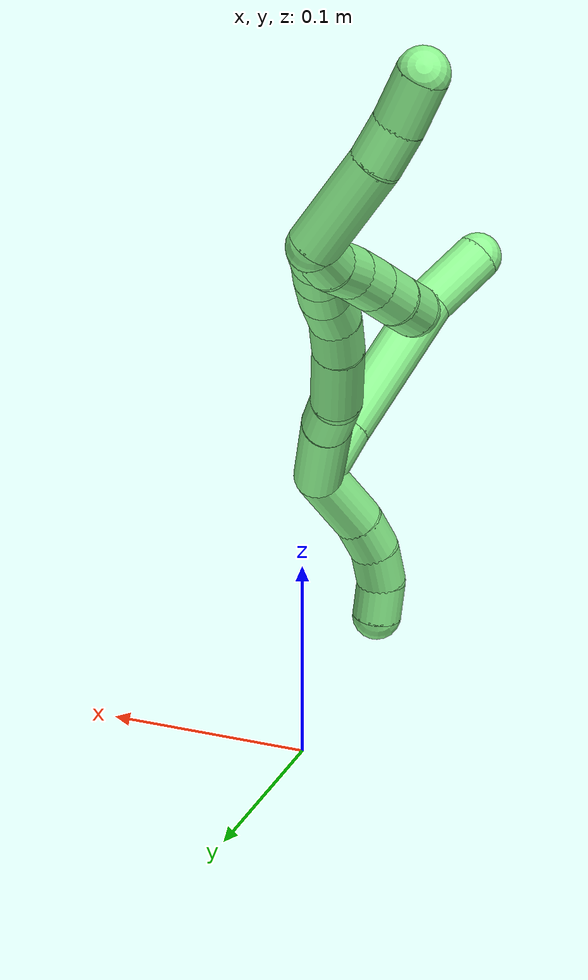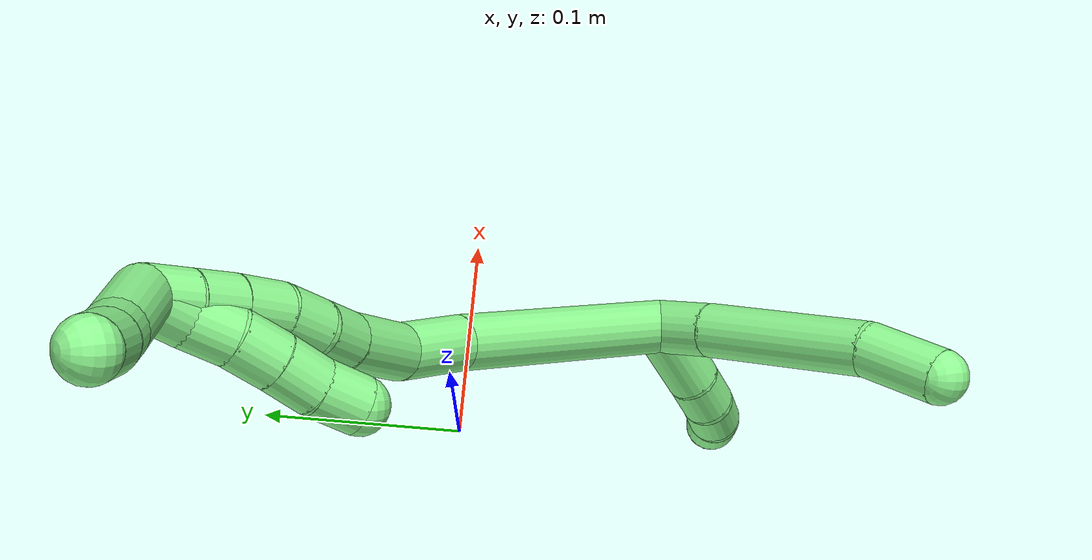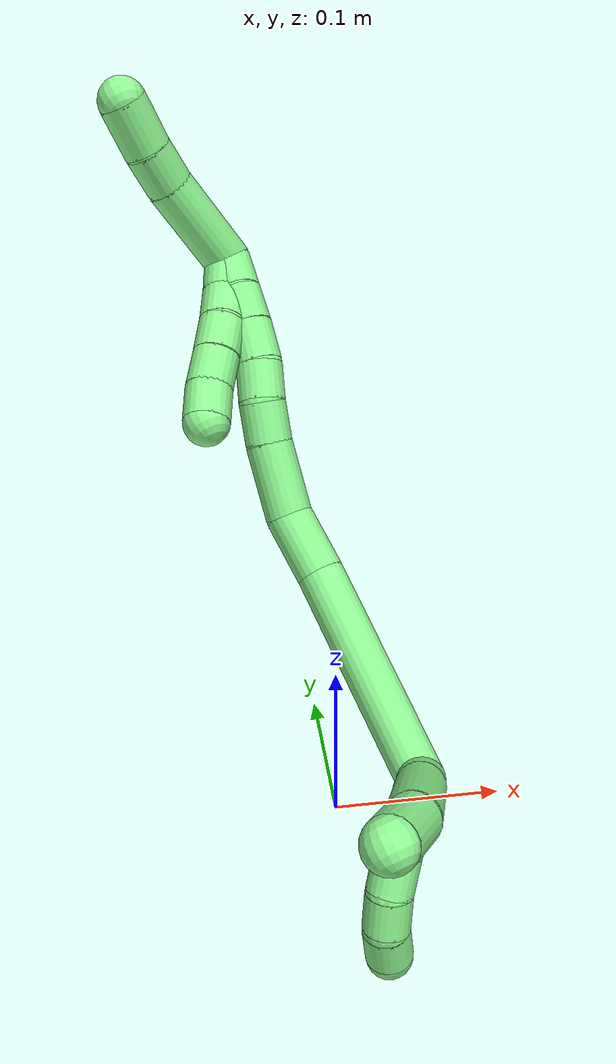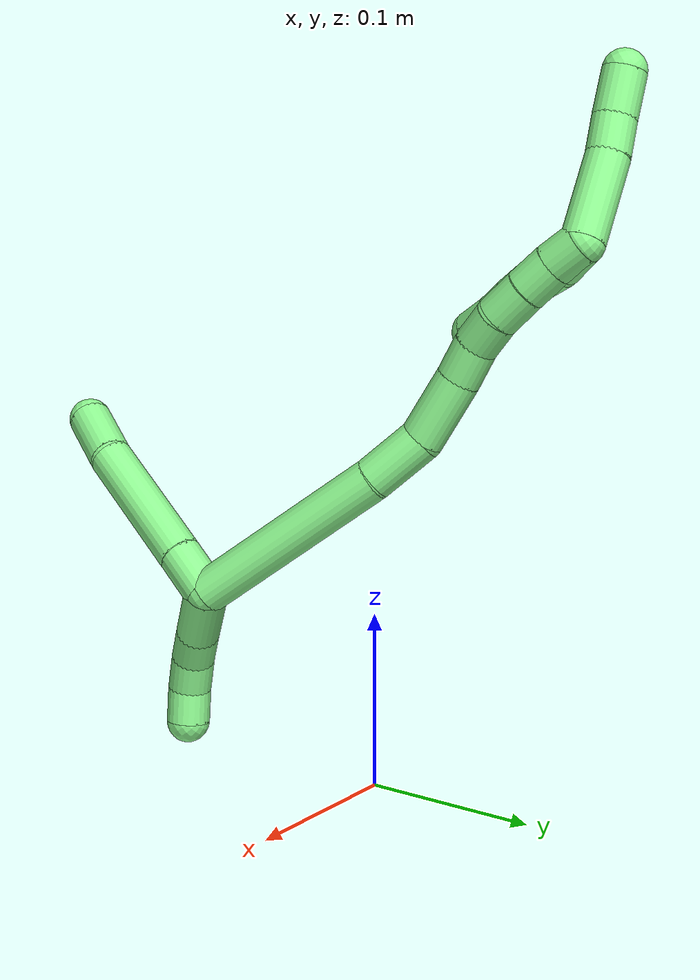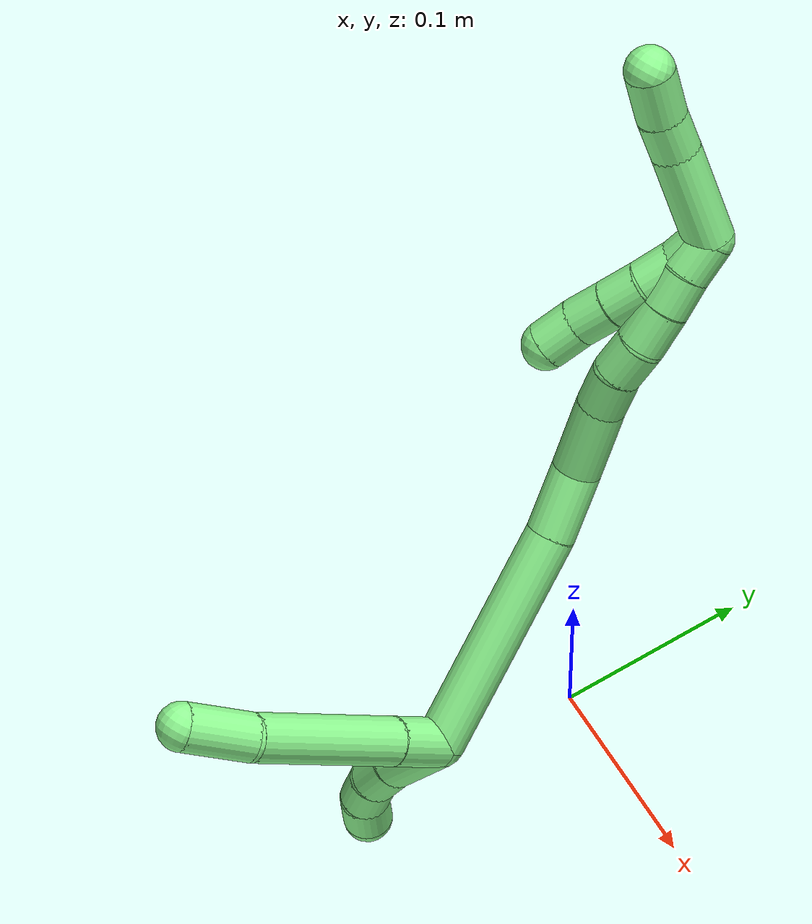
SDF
<sdf version="1.7">
 <world name="default">
  <model name="13">
   <static>0</static>
   <link name="13">
    <collision name="collision-cylinder-e_1_2_8">
     <pose>-0.007378 -0.012369 -0.002717 1.78703 -0.527536 -0.647978</pose>
     <geometry><cylinder><radius>0.0125</radius><length>0.029313</length></cylinder></geometry>
     <surface>
      <friction><ode><mu>1.16</mu><mu2>1.16</mu2><slip1>0</slip1><slip2>0</slip2></ode></friction>
      <contact><ode><kp>1e+06</kp><kd>1</kd><max_vel>0</max_vel><min_depth>0.001</min_depth></ode></contact>
     </surface>
    </collision>
    <visual name="visual-cylinder-e_1_2_8">
     <pose>-0.007378 -0.012369 -0.002717 1.78703 -0.527536 -0.647978</pose>
     <geometry><cylinder><radius>0.0125</radius><length>0.029313</length></cylinder></geometry>
     <material><ambient>0.564706 0.984314 0.572549 1</ambient></material>
    </visual>
    <collision name="collision-cylinder-e_2_8_9">
     <pose>-0.037146 -0.058841 -0.014051 1.81829 -0.566842 -0.715806</pose>
     <geometry><cylinder><radius>0.0125</radius><length>0.083391</length></cylinder></geometry>
     <surface>
      <friction><ode><mu>1.16</mu><mu2>1.16</mu2><slip1>0</slip1><slip2>0</slip2></ode></friction>
      <contact><ode><kp>1e+06</kp><kd>1</kd><max_vel>0</max_vel><min_depth>0.001</min_depth></ode></contact>
     </surface>
    </collision>
    <visual name="visual-cylinder-e_2_8_9">
     <pose>-0.037146 -0.058841 -0.014051 1.81829 -0.566842 -0.715806</pose>
     <geometry><cylinder><radius>0.0125</radius><length>0.083391</length></cylinder></geometry>
     <material><ambient>0.564706 0.984314 0.572549 1</ambient></material>
    </visual>
    <collision name="collision-cylinder-e_3_9_6">
     <pose>-0.072696 -0.105689 -0.026142 1.8369 -0.783533 -0.9915</pose>
     <geometry><cylinder><radius>0.0125</radius><length>0.037296</length></cylinder></geometry>
     <surface>
      <friction><ode><mu>1.16</mu><mu2>1.16</mu2><slip1>0</slip1><slip2>0</slip2></ode></friction>
      <contact><ode><kp>1e+06</kp><kd>1</kd><max_vel>0</max_vel><min_depth>0.001</min_depth></ode></contact>
     </surface>
    </collision>
    <visual name="visual-cylinder-e_3_9_6">
     <pose>-0.072696 -0.105689 -0.026142 1.8369 -0.783533 -0.9915</pose>
     <geometry><cylinder><radius>0.0125</radius><length>0.037296</length></cylinder></geometry>
     <material><ambient>0.564706 0.984314 0.572549 1</ambient></material>
    </visual>
    <collision name="collision-cylinder-e_1_2_10">
     <pose>-0.010172 0.009055 -0.013481 -2.55014 -0.559592 1.51228</pose>
     <geometry><cylinder><radius>0.0125</radius><length>0.038326</length></cylinder></geometry>
     <surface>
      <friction><ode><mu>1.16</mu><mu2>1.16</mu2><slip1>0</slip1><slip2>0</slip2></ode></friction>
      <contact><ode><kp>1e+06</kp><kd>1</kd><max_vel>0</max_vel><min_depth>0.001</min_depth></ode></contact>
     </surface>
    </collision>
    <visual name="visual-cylinder-e_1_2_10">
     <pose>-0.010172 0.009055 -0.013481 -2.55014 -0.559592 1.51228</pose>
     <geometry><cylinder><radius>0.0125</radius><length>0.038326</length></cylinder></geometry>
     <material><ambient>0.564706 0.984314 0.572549 1</ambient></material>
    </visual>
    <collision name="collision-cylinder-e_2_10_11">
     <pose>-0.024533 0.023882 -0.03462 -2.49563 -0.411778 1.11574</pose>
     <geometry><cylinder><radius>0.0125</radius><length>0.020927</length></cylinder></geometry>
     <surface>
      <friction><ode><mu>1.16</mu><mu2>1.16</mu2><slip1>0</slip1><slip2>0</slip2></ode></friction>
      <contact><ode><kp>1e+06</kp><kd>1</kd><max_vel>0</max_vel><min_depth>0.001</min_depth></ode></contact>
     </surface>
    </collision>
    <visual name="visual-cylinder-e_2_10_11">
     <pose>-0.024533 0.023882 -0.03462 -2.49563 -0.411778 1.11574</pose>
     <geometry><cylinder><radius>0.0125</radius><length>0.020927</length></cylinder></geometry>
     <material><ambient>0.564706 0.984314 0.572549 1</ambient></material>
    </visual>
    <collision name="collision-cylinder-e_3_11_12">
     <pose>-0.030522 0.036642 -0.049617 -2.38082 -0.175917 0.434136</pose>
     <geometry><cylinder><radius>0.0125</radius><length>0.020587</length></cylinder></geometry>
     <surface>
      <friction><ode><mu>1.16</mu><mu2>1.16</mu2><slip1>0</slip1><slip2>0</slip2></ode></friction>
      <contact><ode><kp>1e+06</kp><kd>1</kd><max_vel>0</max_vel><min_depth>0.001</min_depth></ode></contact>
     </surface>
    </collision>
    <visual name="visual-cylinder-e_3_11_12">
     <pose>-0.030522 0.036642 -0.049617 -2.38082 -0.175917 0.434136</pose>
     <geometry><cylinder><radius>0.0125</radius><length>0.020587</length></cylinder></geometry>
     <material><ambient>0.564706 0.984314 0.572549 1</ambient></material>
    </visual>
    <collision name="collision-cylinder-e_4_12_5">
     <pose>-0.031135 0.05151 -0.06313 -2.23521 0.118187 -0.241783</pose>
     <geometry><cylinder><radius>0.0125</radius><length>0.02016</length></cylinder></geometry>
     <surface>
      <friction><ode><mu>1.16</mu><mu2>1.16</mu2><slip1>0</slip1><slip2>0</slip2></ode></friction>
      <contact><ode><kp>1e+06</kp><kd>1</kd><max_vel>0</max_vel><min_depth>0.001</min_depth></ode></contact>
     </surface>
    </collision>
    <visual name="visual-cylinder-e_4_12_5">
     <pose>-0.031135 0.05151 -0.06313 -2.23521 0.118187 -0.241783</pose>
     <geometry><cylinder><radius>0.0125</radius><length>0.02016</length></cylinder></geometry>
     <material><ambient>0.564706 0.984314 0.572549 1</ambient></material>
    </visual>
    <collision name="collision-cylinder-e_1_2_13">
     <pose>-0.000391 4e-05 0.05959 -0.00067 -0.006557 2e-06</pose>
     <geometry><cylinder><radius>0.0125</radius><length>0.119183</length></cylinder></geometry>
     <surface>
      <friction><ode><mu>1.16</mu><mu2>1.16</mu2><slip1>0</slip1><slip2>0</slip2></ode></friction>
      <contact><ode><kp>1e+06</kp><kd>1</kd><max_vel>0</max_vel><min_depth>0.001</min_depth></ode></contact>
     </surface>
    </collision>
    <visual name="visual-cylinder-e_1_2_13">
     <pose>-0.000391 4e-05 0.05959 -0.00067 -0.006557 2e-06</pose>
     <geometry><cylinder><radius>0.0125</radius><length>0.119183</length></cylinder></geometry>
     <material><ambient>0.564706 0.984314 0.572549 1</ambient></material>
    </visual>
    <collision name="collision-cylinder-e_2_13_14">
     <pose>-0.002432 -0.001289 0.13678 0.077618 -0.093208 -0.003622</pose>
     <geometry><cylinder><radius>0.0125</radius><length>0.035458</length></cylinder></geometry>
     <surface>
      <friction><ode><mu>1.16</mu><mu2>1.16</mu2><slip1>0</slip1><slip2>0</slip2></ode></friction>
      <contact><ode><kp>1e+06</kp><kd>1</kd><max_vel>0</max_vel><min_depth>0.001</min_depth></ode></contact>
     </surface>
    </collision>
    <visual name="visual-cylinder-e_2_13_14">
     <pose>-0.002432 -0.001289 0.13678 0.077618 -0.093208 -0.003622</pose>
     <geometry><cylinder><radius>0.0125</radius><length>0.035458</length></cylinder></geometry>
     <material><ambient>0.564706 0.984314 0.572549 1</ambient></material>
    </visual>
    <collision name="collision-cylinder-e_3_14_15">
     <pose>-0.004166 -0.010582 0.172737 0.407487 -0.00423 -0.000874</pose>
     <geometry><cylinder><radius>0.0125</radius><length>0.039992</length></cylinder></geometry>
     <surface>
      <friction><ode><mu>1.16</mu><mu2>1.16</mu2><slip1>0</slip1><slip2>0</slip2></ode></friction>
      <contact><ode><kp>1e+06</kp><kd>1</kd><max_vel>0</max_vel><min_depth>0.001</min_depth></ode></contact>
     </surface>
    </collision>
    <visual name="visual-cylinder-e_3_14_15">
     <pose>-0.004166 -0.010582 0.172737 0.407487 -0.00423 -0.000874</pose>
     <geometry><cylinder><radius>0.0125</radius><length>0.039992</length></cylinder></geometry>
     <material><ambient>0.564706 0.984314 0.572549 1</ambient></material>
    </visual>
    <collision name="collision-cylinder-e_4_15_16">
     <pose>-0.003329 -0.02339 0.200811 0.465804 0.084598 0.020079</pose>
     <geometry><cylinder><radius>0.0125</radius><length>0.021825</length></cylinder></geometry>
     <surface>
      <friction><ode><mu>1.16</mu><mu2>1.16</mu2><slip1>0</slip1><slip2>0</slip2></ode></friction>
      <contact><ode><kp>1e+06</kp><kd>1</kd><max_vel>0</max_vel><min_depth>0.001</min_depth></ode></contact>
     </surface>
    </collision>
    <visual name="visual-cylinder-e_4_15_16">
     <pose>-0.003329 -0.02339 0.200811 0.465804 0.084598 0.020079</pose>
     <geometry><cylinder><radius>0.0125</radius><length>0.021825</length></cylinder></geometry>
     <material><ambient>0.564706 0.984314 0.572549 1</ambient></material>
    </visual>
    <collision name="collision-cylinder-e_5_16_17">
     <pose>0.000144 -0.031296 0.220106 0.305592 0.248675 0.038489</pose>
     <geometry><cylinder><radius>0.0125</radius><length>0.020729</length></cylinder></geometry>
     <surface>
      <friction><ode><mu>1.16</mu><mu2>1.16</mu2><slip1>0</slip1><slip2>0</slip2></ode></friction>
      <contact><ode><kp>1e+06</kp><kd>1</kd><max_vel>0</max_vel><min_depth>0.001</min_depth></ode></contact>
     </surface>
    </collision>
    <visual name="visual-cylinder-e_5_16_17">
     <pose>0.000144 -0.031296 0.220106 0.305592 0.248675 0.038489</pose>
     <geometry><cylinder><radius>0.0125</radius><length>0.020729</length></cylinder></geometry>
     <material><ambient>0.564706 0.984314 0.572549 1</ambient></material>
    </visual>
    <collision name="collision-cylinder-e_6_17_18">
     <pose>0.00408 -0.036085 0.240649 0.159767 0.124087 0.009946</pose>
     <geometry><cylinder><radius>0.0125</radius><length>0.022381</length></cylinder></geometry>
     <surface>
      <friction><ode><mu>1.16</mu><mu2>1.16</mu2><slip1>0</slip1><slip2>0</slip2></ode></friction>
      <contact><ode><kp>1e+06</kp><kd>1</kd><max_vel>0</max_vel><min_depth>0.001</min_depth></ode></contact>
     </surface>
    </collision>
    <visual name="visual-cylinder-e_6_17_18">
     <pose>0.00408 -0.036085 0.240649 0.159767 0.124087 0.009946</pose>
     <geometry><cylinder><radius>0.0125</radius><length>0.022381</length></cylinder></geometry>
     <material><ambient>0.564706 0.984314 0.572549 1</ambient></material>
    </visual>
    <collision name="collision-cylinder-e_7_18_19">
     <pose>0.00624 -0.039183 0.261622 0.132238 0.076539 0.005071</pose>
     <geometry><cylinder><radius>0.0125</radius><length>0.020254</length></cylinder></geometry>
     <surface>
      <friction><ode><mu>1.16</mu><mu2>1.16</mu2><slip1>0</slip1><slip2>0</slip2></ode></friction>
      <contact><ode><kp>1e+06</kp><kd>1</kd><max_vel>0</max_vel><min_depth>0.001</min_depth></ode></contact>
     </surface>
    </collision>
    <visual name="visual-cylinder-e_7_18_19">
     <pose>0.00624 -0.039183 0.261622 0.132238 0.076539 0.005071</pose>
     <geometry><cylinder><radius>0.0125</radius><length>0.020254</length></cylinder></geometry>
     <material><ambient>0.564706 0.984314 0.572549 1</ambient></material>
    </visual>
    <collision name="collision-cylinder-e_8_19_1">
     <pose>0.008344 -0.040954 0.281622 0.043987 0.132218 0.002913</pose>
     <geometry><cylinder><radius>0.0125</radius><length>0.020178</length></cylinder></geometry>
     <surface>
      <friction><ode><mu>1.16</mu><mu2>1.16</mu2><slip1>0</slip1><slip2>0</slip2></ode></friction>
      <contact><ode><kp>1e+06</kp><kd>1</kd><max_vel>0</max_vel><min_depth>0.001</min_depth></ode></contact>
     </surface>
    </collision>
    <visual name="visual-cylinder-e_8_19_1">
     <pose>0.008344 -0.040954 0.281622 0.043987 0.132218 0.002913</pose>
     <geometry><cylinder><radius>0.0125</radius><length>0.020178</length></cylinder></geometry>
     <material><ambient>0.564706 0.984314 0.572549 1</ambient></material>
    </visual>
    <collision name="collision-cylinder-e_1_1_20">
     <pose>0.005673 -0.039548 0.282636 -2.93882 -0.411675 2.23479</pose>
     <geometry><cylinder><radius>0.0125</radius><length>0.02</length></cylinder></geometry>
     <surface>
      <friction><ode><mu>1.16</mu><mu2>1.16</mu2><slip1>0</slip1><slip2>0</slip2></ode></friction>
      <contact><ode><kp>1e+06</kp><kd>1</kd><max_vel>0</max_vel><min_depth>0.001</min_depth></ode></contact>
     </surface>
    </collision>
    <visual name="visual-cylinder-e_1_1_20">
     <pose>0.005673 -0.039548 0.282636 -2.93882 -0.411675 2.23479</pose>
     <geometry><cylinder><radius>0.0125</radius><length>0.02</length></cylinder></geometry>
     <material><ambient>0.564706 0.984314 0.572549 1</ambient></material>
    </visual>
    <collision name="collision-cylinder-e_2_20_21">
     <pose>-0.00329 -0.038003 0.264982 3.10696 -0.519072 -3.01134</pose>
     <geometry><cylinder><radius>0.0125</radius><length>0.02</length></cylinder></geometry>
     <surface>
      <friction><ode><mu>1.16</mu><mu2>1.16</mu2><slip1>0</slip1><slip2>0</slip2></ode></friction>
      <contact><ode><kp>1e+06</kp><kd>1</kd><max_vel>0</max_vel><min_depth>0.001</min_depth></ode></contact>
     </surface>
    </collision>
    <visual name="visual-cylinder-e_2_20_21">
     <pose>-0.00329 -0.038003 0.264982 3.10696 -0.519072 -3.01134</pose>
     <geometry><cylinder><radius>0.0125</radius><length>0.02</length></cylinder></geometry>
     <material><ambient>0.564706 0.984314 0.572549 1</ambient></material>
    </visual>
    <collision name="collision-cylinder-e_3_21_22">
     <pose>-0.013594 -0.037315 0.24791 -3.02439 -0.563763 2.74181</pose>
     <geometry><cylinder><radius>0.0125</radius><length>0.02</length></cylinder></geometry>
     <surface>
      <friction><ode><mu>1.16</mu><mu2>1.16</mu2><slip1>0</slip1><slip2>0</slip2></ode></friction>
      <contact><ode><kp>1e+06</kp><kd>1</kd><max_vel>0</max_vel><min_depth>0.001</min_depth></ode></contact>
     </surface>
    </collision>
    <visual name="visual-cylinder-e_3_21_22">
     <pose>-0.013594 -0.037315 0.24791 -3.02439 -0.563763 2.74181</pose>
     <geometry><cylinder><radius>0.0125</radius><length>0.02</length></cylinder></geometry>
     <material><ambient>0.564706 0.984314 0.572549 1</ambient></material>
    </visual>
    <collision name="collision-cylinder-e_4_22_23">
     <pose>-0.024379 -0.034892 0.231248 -2.96977 -0.575289 2.57503</pose>
     <geometry><cylinder><radius>0.0125</radius><length>0.02</length></cylinder></geometry>
     <surface>
      <friction><ode><mu>1.16</mu><mu2>1.16</mu2><slip1>0</slip1><slip2>0</slip2></ode></friction>
      <contact><ode><kp>1e+06</kp><kd>1</kd><max_vel>0</max_vel><min_depth>0.001</min_depth></ode></contact>
     </surface>
    </collision>
    <visual name="visual-cylinder-e_4_22_23">
     <pose>-0.024379 -0.034892 0.231248 -2.96977 -0.575289 2.57503</pose>
     <geometry><cylinder><radius>0.0125</radius><length>0.02</length></cylinder></geometry>
     <material><ambient>0.564706 0.984314 0.572549 1</ambient></material>
    </visual>
    <collision name="collision-cylinder-e_5_23_4">
     <pose>-0.034375 -0.03299 0.214092 -3.08905 -0.472958 2.92437</pose>
     <geometry><cylinder><radius>0.0125</radius><length>0.02</length></cylinder></geometry>
     <surface>
      <friction><ode><mu>1.16</mu><mu2>1.16</mu2><slip1>0</slip1><slip2>0</slip2></ode></friction>
      <contact><ode><kp>1e+06</kp><kd>1</kd><max_vel>0</max_vel><min_depth>0.001</min_depth></ode></contact>
     </surface>
    </collision>
    <visual name="visual-cylinder-e_5_23_4">
     <pose>-0.034375 -0.03299 0.214092 -3.08905 -0.472958 2.92437</pose>
     <geometry><cylinder><radius>0.0125</radius><length>0.02</length></cylinder></geometry>
     <material><ambient>0.564706 0.984314 0.572549 1</ambient></material>
    </visual>
    <collision name="collision-cylinder-e_1_1_24">
     <pose>-0.004061 -0.055563 0.308003 0.712868 -0.565023 -0.215325</pose>
     <geometry><cylinder><radius>0.0125</radius><length>0.051305</length></cylinder></geometry>
     <surface>
      <friction><ode><mu>1.16</mu><mu2>1.16</mu2><slip1>0</slip1><slip2>0</slip2></ode></friction>
      <contact><ode><kp>1e+06</kp><kd>1</kd><max_vel>0</max_vel><min_depth>0.001</min_depth></ode></contact>
     </surface>
    </collision>
    <visual name="visual-cylinder-e_1_1_24">
     <pose>-0.004061 -0.055563 0.308003 0.712868 -0.565023 -0.215325</pose>
     <geometry><cylinder><radius>0.0125</radius><length>0.051305</length></cylinder></geometry>
     <material><ambient>0.564706 0.984314 0.572549 1</ambient></material>
    </visual>
    <collision name="collision-cylinder-e_2_24_25">
     <pose>-0.022897 -0.076807 0.330945 0.823658 -0.486518 -0.215965</pose>
     <geometry><cylinder><radius>0.0125</radius><length>0.021816</length></cylinder></geometry>
     <surface>
      <friction><ode><mu>1.16</mu><mu2>1.16</mu2><slip1>0</slip1><slip2>0</slip2></ode></friction>
      <contact><ode><kp>1e+06</kp><kd>1</kd><max_vel>0</max_vel><min_depth>0.001</min_depth></ode></contact>
     </surface>
    </collision>
    <visual name="visual-cylinder-e_2_24_25">
     <pose>-0.022897 -0.076807 0.330945 0.823658 -0.486518 -0.215965</pose>
     <geometry><cylinder><radius>0.0125</radius><length>0.021816</length></cylinder></geometry>
     <material><ambient>0.564706 0.984314 0.572549 1</ambient></material>
    </visual>
    <collision name="collision-cylinder-e_3_25_3">
     <pose>-0.033153 -0.092582 0.346346 0.776992 -0.393787 -0.16293</pose>
     <geometry><cylinder><radius>0.0125</radius><length>0.026878</length></cylinder></geometry>
     <surface>
      <friction><ode><mu>1.16</mu><mu2>1.16</mu2><slip1>0</slip1><slip2>0</slip2></ode></friction>
      <contact><ode><kp>1e+06</kp><kd>1</kd><max_vel>0</max_vel><min_depth>0.001</min_depth></ode></contact>
     </surface>
    </collision>
    <visual name="visual-cylinder-e_3_25_3">
     <pose>-0.033153 -0.092582 0.346346 0.776992 -0.393787 -0.16293</pose>
     <geometry><cylinder><radius>0.0125</radius><length>0.026878</length></cylinder></geometry>
     <material><ambient>0.564706 0.984314 0.572549 1</ambient></material>
    </visual>
    <collision name="collision-sphere-3">
     <pose>-0.03831 -0.101284 0.355196 0 -0 0</pose>
     <geometry><sphere><radius>0.0125</radius></sphere></geometry>
     <surface>
      <friction><ode><mu>1.16</mu><mu2>1.16</mu2><slip1>0</slip1><slip2>0</slip2></ode></friction>
      <contact><ode><kp>1e+06</kp><kd>1</kd><max_vel>0</max_vel><min_depth>0.001</min_depth></ode></contact>
     </surface>
    </collision>
    <visual name="visual-sphere-3">
     <pose>-0.03831 -0.101284 0.355196 0 -0 0</pose>
     <geometry><sphere><radius>0.0125</radius></sphere></geometry>
     <material><ambient>0.564706 0.984314 0.572549 1</ambient></material>
    </visual>
    <collision name="collision-sphere-25">
     <pose>-0.027997 -0.083881 0.337497 0 -0 0</pose>
     <geometry><sphere><radius>0.0125</radius></sphere></geometry>
     <surface>
      <friction><ode><mu>1.16</mu><mu2>1.16</mu2><slip1>0</slip1><slip2>0</slip2></ode></friction>
      <contact><ode><kp>1e+06</kp><kd>1</kd><max_vel>0</max_vel><min_depth>0.001</min_depth></ode></contact>
     </surface>
    </collision>
    <visual name="visual-sphere-25">
     <pose>-0.027997 -0.083881 0.337497 0 -0 0</pose>
     <geometry><sphere><radius>0.0125</radius></sphere></geometry>
     <material><ambient>0.564706 0.984314 0.572549 1</ambient></material>
    </visual>
    <collision name="collision-sphere-24">
     <pose>-0.017797 -0.069733 0.324393 0 -0 0</pose>
     <geometry><sphere><radius>0.0125</radius></sphere></geometry>
     <surface>
      <friction><ode><mu>1.16</mu><mu2>1.16</mu2><slip1>0</slip1><slip2>0</slip2></ode></friction>
      <contact><ode><kp>1e+06</kp><kd>1</kd><max_vel>0</max_vel><min_depth>0.001</min_depth></ode></contact>
     </surface>
    </collision>
    <visual name="visual-sphere-24">
     <pose>-0.017797 -0.069733 0.324393 0 -0 0</pose>
     <geometry><sphere><radius>0.0125</radius></sphere></geometry>
     <material><ambient>0.564706 0.984314 0.572549 1</ambient></material>
    </visual>
    <collision name="collision-sphere-4">
     <pose>-0.03893 -0.032523 0.205202 0 -0 0</pose>
     <geometry><sphere><radius>0.0125</radius></sphere></geometry>
     <surface>
      <friction><ode><mu>1.16</mu><mu2>1.16</mu2><slip1>0</slip1><slip2>0</slip2></ode></friction>
      <contact><ode><kp>1e+06</kp><kd>1</kd><max_vel>0</max_vel><min_depth>0.001</min_depth></ode></contact>
     </surface>
    </collision>
    <visual name="visual-sphere-4">
     <pose>-0.03893 -0.032523 0.205202 0 -0 0</pose>
     <geometry><sphere><radius>0.0125</radius></sphere></geometry>
     <material><ambient>0.564706 0.984314 0.572549 1</ambient></material>
    </visual>
    <collision name="collision-sphere-23">
     <pose>-0.029819 -0.033458 0.222982 0 -0 0</pose>
     <geometry><sphere><radius>0.0125</radius></sphere></geometry>
     <surface>
      <friction><ode><mu>1.16</mu><mu2>1.16</mu2><slip1>0</slip1><slip2>0</slip2></ode></friction>
      <contact><ode><kp>1e+06</kp><kd>1</kd><max_vel>0</max_vel><min_depth>0.001</min_depth></ode></contact>
     </surface>
    </collision>
    <visual name="visual-sphere-23">
     <pose>-0.029819 -0.033458 0.222982 0 -0 0</pose>
     <geometry><sphere><radius>0.0125</radius></sphere></geometry>
     <material><ambient>0.564706 0.984314 0.572549 1</ambient></material>
    </visual>
    <collision name="collision-sphere-22">
     <pose>-0.018938 -0.036327 0.239515 0 -0 0</pose>
     <geometry><sphere><radius>0.0125</radius></sphere></geometry>
     <surface>
      <friction><ode><mu>1.16</mu><mu2>1.16</mu2><slip1>0</slip1><slip2>0</slip2></ode></friction>
      <contact><ode><kp>1e+06</kp><kd>1</kd><max_vel>0</max_vel><min_depth>0.001</min_depth></ode></contact>
     </surface>
    </collision>
    <visual name="visual-sphere-22">
     <pose>-0.018938 -0.036327 0.239515 0 -0 0</pose>
     <geometry><sphere><radius>0.0125</radius></sphere></geometry>
     <material><ambient>0.564706 0.984314 0.572549 1</ambient></material>
    </visual>
    <collision name="collision-sphere-21">
     <pose>-0.00825 -0.038304 0.256304 0 -0 0</pose>
     <geometry><sphere><radius>0.0125</radius></sphere></geometry>
     <surface>
      <friction><ode><mu>1.16</mu><mu2>1.16</mu2><slip1>0</slip1><slip2>0</slip2></ode></friction>
      <contact><ode><kp>1e+06</kp><kd>1</kd><max_vel>0</max_vel><min_depth>0.001</min_depth></ode></contact>
     </surface>
    </collision>
    <visual name="visual-sphere-21">
     <pose>-0.00825 -0.038304 0.256304 0 -0 0</pose>
     <geometry><sphere><radius>0.0125</radius></sphere></geometry>
     <material><ambient>0.564706 0.984314 0.572549 1</ambient></material>
    </visual>
    <collision name="collision-sphere-20">
     <pose>0.001671 -0.037703 0.273659 0 -0 0</pose>
     <geometry><sphere><radius>0.0125</radius></sphere></geometry>
     <surface>
      <friction><ode><mu>1.16</mu><mu2>1.16</mu2><slip1>0</slip1><slip2>0</slip2></ode></friction>
      <contact><ode><kp>1e+06</kp><kd>1</kd><max_vel>0</max_vel><min_depth>0.001</min_depth></ode></contact>
     </surface>
    </collision>
    <visual name="visual-sphere-20">
     <pose>0.001671 -0.037703 0.273659 0 -0 0</pose>
     <geometry><sphere><radius>0.0125</radius></sphere></geometry>
     <material><ambient>0.564706 0.984314 0.572549 1</ambient></material>
    </visual>
    <collision name="collision-sphere-11">
     <pose>-0.028721 0.029654 -0.042276 0 -0 0</pose>
     <geometry><sphere><radius>0.0125</radius></sphere></geometry>
     <surface>
      <friction><ode><mu>1.16</mu><mu2>1.16</mu2><slip1>0</slip1><slip2>0</slip2></ode></friction>
      <contact><ode><kp>1e+06</kp><kd>1</kd><max_vel>0</max_vel><min_depth>0.001</min_depth></ode></contact>
     </surface>
    </collision>
    <visual name="visual-sphere-11">
     <pose>-0.028721 0.029654 -0.042276 0 -0 0</pose>
     <geometry><sphere><radius>0.0125</radius></sphere></geometry>
     <material><ambient>0.564706 0.984314 0.572549 1</ambient></material>
    </visual>
    <collision name="collision-sphere-10">
     <pose>-0.020345 0.01811 -0.026963 0 -0 0</pose>
     <geometry><sphere><radius>0.0125</radius></sphere></geometry>
     <surface>
      <friction><ode><mu>1.16</mu><mu2>1.16</mu2><slip1>0</slip1><slip2>0</slip2></ode></friction>
      <contact><ode><kp>1e+06</kp><kd>1</kd><max_vel>0</max_vel><min_depth>0.001</min_depth></ode></contact>
     </surface>
    </collision>
    <visual name="visual-sphere-10">
     <pose>-0.020345 0.01811 -0.026963 0 -0 0</pose>
     <geometry><sphere><radius>0.0125</radius></sphere></geometry>
     <material><ambient>0.564706 0.984314 0.572549 1</ambient></material>
    </visual>
    <collision name="collision-sphere-6">
     <pose>-0.085858 -0.118435 -0.029616 0 -0 0</pose>
     <geometry><sphere><radius>0.0125</radius></sphere></geometry>
     <surface>
      <friction><ode><mu>1.16</mu><mu2>1.16</mu2><slip1>0</slip1><slip2>0</slip2></ode></friction>
      <contact><ode><kp>1e+06</kp><kd>1</kd><max_vel>0</max_vel><min_depth>0.001</min_depth></ode></contact>
     </surface>
    </collision>
    <visual name="visual-sphere-6">
     <pose>-0.085858 -0.118435 -0.029616 0 -0 0</pose>
     <geometry><sphere><radius>0.0125</radius></sphere></geometry>
     <material><ambient>0.564706 0.984314 0.572549 1</ambient></material>
    </visual>
    <collision name="collision-sphere-9">
     <pose>-0.059535 -0.092943 -0.022668 0 -0 0</pose>
     <geometry><sphere><radius>0.0125</radius></sphere></geometry>
     <surface>
      <friction><ode><mu>1.16</mu><mu2>1.16</mu2><slip1>0</slip1><slip2>0</slip2></ode></friction>
      <contact><ode><kp>1e+06</kp><kd>1</kd><max_vel>0</max_vel><min_depth>0.001</min_depth></ode></contact>
     </surface>
    </collision>
    <visual name="visual-sphere-9">
     <pose>-0.059535 -0.092943 -0.022668 0 -0 0</pose>
     <geometry><sphere><radius>0.0125</radius></sphere></geometry>
     <material><ambient>0.564706 0.984314 0.572549 1</ambient></material>
    </visual>
    <collision name="collision-sphere-2">
     <geometry><sphere><radius>0.0125</radius></sphere></geometry>
     <surface>
      <friction><ode><mu>1.16</mu><mu2>1.16</mu2><slip1>0</slip1><slip2>0</slip2></ode></friction>
      <contact><ode><kp>1e+06</kp><kd>1</kd><max_vel>0</max_vel><min_depth>0.001</min_depth></ode></contact>
     </surface>
    </collision>
    <visual name="visual-sphere-2">
     <geometry><sphere><radius>0.0125</radius></sphere></geometry>
     <material><ambient>0.564706 0.984314 0.572549 1</ambient></material>
    </visual>
    <collision name="collision-sphere-19">
     <pose>0.007014 -0.040514 0.271631 0 -0 0</pose>
     <geometry><sphere><radius>0.0125</radius></sphere></geometry>
     <surface>
      <friction><ode><mu>1.16</mu><mu2>1.16</mu2><slip1>0</slip1><slip2>0</slip2></ode></friction>
      <contact><ode><kp>1e+06</kp><kd>1</kd><max_vel>0</max_vel><min_depth>0.001</min_depth></ode></contact>
     </surface>
    </collision>
    <visual name="visual-sphere-19">
     <pose>0.007014 -0.040514 0.271631 0 -0 0</pose>
     <geometry><sphere><radius>0.0125</radius></sphere></geometry>
     <material><ambient>0.564706 0.984314 0.572549 1</ambient></material>
    </visual>
    <collision name="collision-sphere-8">
     <pose>-0.014756 -0.024738 -0.005434 0 -0 0</pose>
     <geometry><sphere><radius>0.0125</radius></sphere></geometry>
     <surface>
      <friction><ode><mu>1.16</mu><mu2>1.16</mu2><slip1>0</slip1><slip2>0</slip2></ode></friction>
      <contact><ode><kp>1e+06</kp><kd>1</kd><max_vel>0</max_vel><min_depth>0.001</min_depth></ode></contact>
     </surface>
    </collision>
    <visual name="visual-sphere-8">
     <pose>-0.014756 -0.024738 -0.005434 0 -0 0</pose>
     <geometry><sphere><radius>0.0125</radius></sphere></geometry>
     <material><ambient>0.564706 0.984314 0.572549 1</ambient></material>
    </visual>
    <collision name="collision-sphere-12">
     <pose>-0.032324 0.043629 -0.056958 0 -0 0</pose>
     <geometry><sphere><radius>0.0125</radius></sphere></geometry>
     <surface>
      <friction><ode><mu>1.16</mu><mu2>1.16</mu2><slip1>0</slip1><slip2>0</slip2></ode></friction>
      <contact><ode><kp>1e+06</kp><kd>1</kd><max_vel>0</max_vel><min_depth>0.001</min_depth></ode></contact>
     </surface>
    </collision>
    <visual name="visual-sphere-12">
     <pose>-0.032324 0.043629 -0.056958 0 -0 0</pose>
     <geometry><sphere><radius>0.0125</radius></sphere></geometry>
     <material><ambient>0.564706 0.984314 0.572549 1</ambient></material>
    </visual>
    <collision name="collision-sphere-5">
     <pose>-0.029946 0.05939 -0.069302 0 -0 0</pose>
     <geometry><sphere><radius>0.0125</radius></sphere></geometry>
     <surface>
      <friction><ode><mu>1.16</mu><mu2>1.16</mu2><slip1>0</slip1><slip2>0</slip2></ode></friction>
      <contact><ode><kp>1e+06</kp><kd>1</kd><max_vel>0</max_vel><min_depth>0.001</min_depth></ode></contact>
     </surface>
    </collision>
    <visual name="visual-sphere-5">
     <pose>-0.029946 0.05939 -0.069302 0 -0 0</pose>
     <geometry><sphere><radius>0.0125</radius></sphere></geometry>
     <material><ambient>0.564706 0.984314 0.572549 1</ambient></material>
    </visual>
    <collision name="collision-sphere-13">
     <pose>-0.000781 8e-05 0.119181 0 -0 0</pose>
     <geometry><sphere><radius>0.0125</radius></sphere></geometry>
     <surface>
      <friction><ode><mu>1.16</mu><mu2>1.16</mu2><slip1>0</slip1><slip2>0</slip2></ode></friction>
      <contact><ode><kp>1e+06</kp><kd>1</kd><max_vel>0</max_vel><min_depth>0.001</min_depth></ode></contact>
     </surface>
    </collision>
    <visual name="visual-sphere-13">
     <pose>-0.000781 8e-05 0.119181 0 -0 0</pose>
     <geometry><sphere><radius>0.0125</radius></sphere></geometry>
     <material><ambient>0.564706 0.984314 0.572549 1</ambient></material>
    </visual>
    <collision name="collision-sphere-14">
     <pose>-0.004082 -0.002658 0.154379 0 -0 0</pose>
     <geometry><sphere><radius>0.0125</radius></sphere></geometry>
     <surface>
      <friction><ode><mu>1.16</mu><mu2>1.16</mu2><slip1>0</slip1><slip2>0</slip2></ode></friction>
      <contact><ode><kp>1e+06</kp><kd>1</kd><max_vel>0</max_vel><min_depth>0.001</min_depth></ode></contact>
     </surface>
    </collision>
    <visual name="visual-sphere-14">
     <pose>-0.004082 -0.002658 0.154379 0 -0 0</pose>
     <geometry><sphere><radius>0.0125</radius></sphere></geometry>
     <material><ambient>0.564706 0.984314 0.572549 1</ambient></material>
    </visual>
    <collision name="collision-sphere-15">
     <pose>-0.004251 -0.018506 0.191096 0 -0 0</pose>
     <geometry><sphere><radius>0.0125</radius></sphere></geometry>
     <surface>
      <friction><ode><mu>1.16</mu><mu2>1.16</mu2><slip1>0</slip1><slip2>0</slip2></ode></friction>
      <contact><ode><kp>1e+06</kp><kd>1</kd><max_vel>0</max_vel><min_depth>0.001</min_depth></ode></contact>
     </surface>
    </collision>
    <visual name="visual-sphere-15">
     <pose>-0.004251 -0.018506 0.191096 0 -0 0</pose>
     <geometry><sphere><radius>0.0125</radius></sphere></geometry>
     <material><ambient>0.564706 0.984314 0.572549 1</ambient></material>
    </visual>
    <collision name="collision-sphere-16">
     <pose>-0.002407 -0.028274 0.210526 0 -0 0</pose>
     <geometry><sphere><radius>0.0125</radius></sphere></geometry>
     <surface>
      <friction><ode><mu>1.16</mu><mu2>1.16</mu2><slip1>0</slip1><slip2>0</slip2></ode></friction>
      <contact><ode><kp>1e+06</kp><kd>1</kd><max_vel>0</max_vel><min_depth>0.001</min_depth></ode></contact>
     </surface>
    </collision>
    <visual name="visual-sphere-16">
     <pose>-0.002407 -0.028274 0.210526 0 -0 0</pose>
     <geometry><sphere><radius>0.0125</radius></sphere></geometry>
     <material><ambient>0.564706 0.984314 0.572549 1</ambient></material>
    </visual>
    <collision name="collision-sphere-17">
     <pose>0.002695 -0.034318 0.229686 0 -0 0</pose>
     <geometry><sphere><radius>0.0125</radius></sphere></geometry>
     <surface>
      <friction><ode><mu>1.16</mu><mu2>1.16</mu2><slip1>0</slip1><slip2>0</slip2></ode></friction>
      <contact><ode><kp>1e+06</kp><kd>1</kd><max_vel>0</max_vel><min_depth>0.001</min_depth></ode></contact>
     </surface>
    </collision>
    <visual name="visual-sphere-17">
     <pose>0.002695 -0.034318 0.229686 0 -0 0</pose>
     <geometry><sphere><radius>0.0125</radius></sphere></geometry>
     <material><ambient>0.564706 0.984314 0.572549 1</ambient></material>
    </visual>
    <collision name="collision-sphere-18">
     <pose>0.005465 -0.037852 0.251613 0 -0 0</pose>
     <geometry><sphere><radius>0.0125</radius></sphere></geometry>
     <surface>
      <friction><ode><mu>1.16</mu><mu2>1.16</mu2><slip1>0</slip1><slip2>0</slip2></ode></friction>
      <contact><ode><kp>1e+06</kp><kd>1</kd><max_vel>0</max_vel><min_depth>0.001</min_depth></ode></contact>
     </surface>
    </collision>
    <visual name="visual-sphere-18">
     <pose>0.005465 -0.037852 0.251613 0 -0 0</pose>
     <geometry><sphere><radius>0.0125</radius></sphere></geometry>
     <material><ambient>0.564706 0.984314 0.572549 1</ambient></material>
    </visual>
    <collision name="collision-sphere-1">
     <pose>0.009674 -0.041394 0.291613 0 -0 0</pose>
     <geometry><sphere><radius>0.0125</radius></sphere></geometry>
     <surface>
      <friction><ode><mu>1.16</mu><mu2>1.16</mu2><slip1>0</slip1><slip2>0</slip2></ode></friction>
      <contact><ode><kp>1e+06</kp><kd>1</kd><max_vel>0</max_vel><min_depth>0.001</min_depth></ode></contact>
     </surface>
    </collision>
    <visual name="visual-sphere-1">
     <pose>0.009674 -0.041394 0.291613 0 -0 0</pose>
     <geometry><sphere><radius>0.0125</radius></sphere></geometry>
     <material><ambient>0.564706 0.984314 0.572549 1</ambient></material>
    </visual>
    <inertial>
     <pose>-0.014888 -0.02839 0.127413 0 -0 0</pose>
     <mass>0.75</mass>
     <inertia>
      <ixx>0.000173</ixx>
      <ixy>0</ixy>
      <ixz>0</ixz>
      <iyy>0.000156</iyy>
      <iyz>0</iyz>
      <izz>0.000121</izz>
     </inertia>
    </inertial>
   </link>
   <pose>0.029656 -0.096039 0.103282 -0.933951 0.009558 0.418608</pose>
  </model>
 </world>
</sdf>
